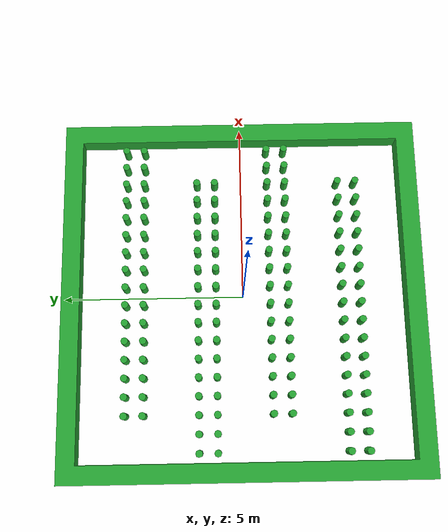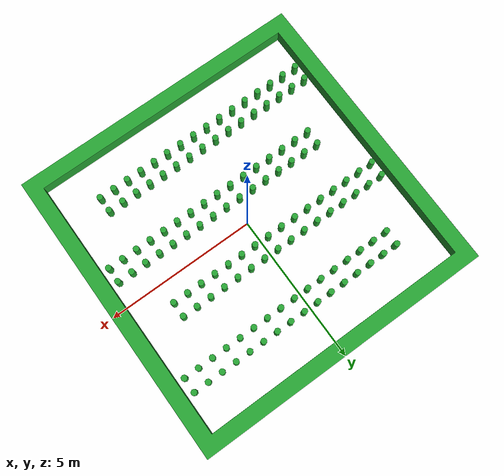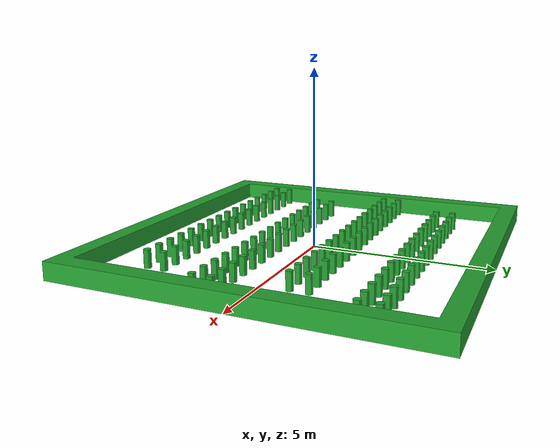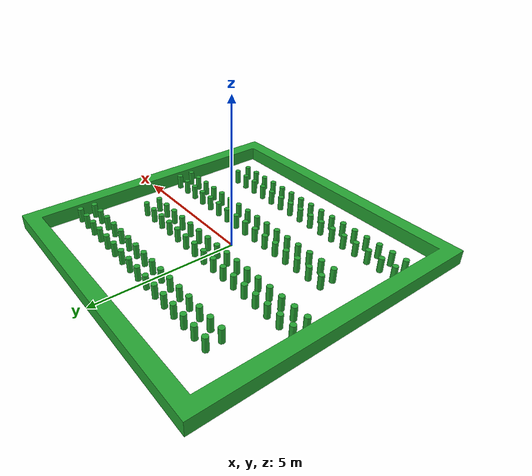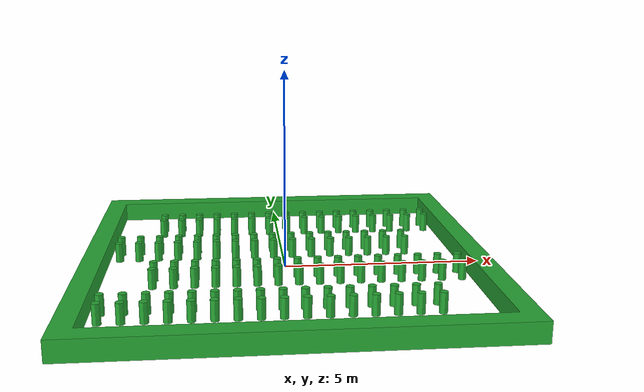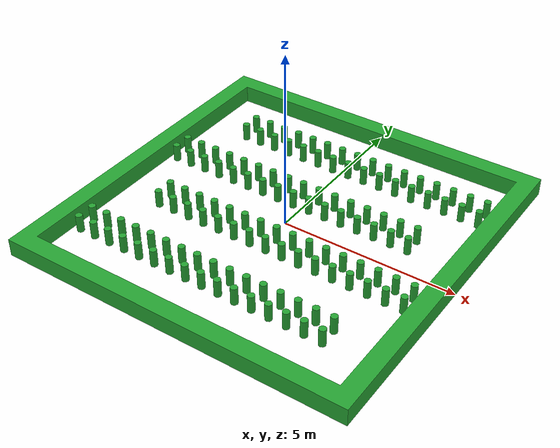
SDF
<?xml version='1.0'?>
<sdf version='1.5'>
  <!-- Bambuzal -->
  <model name='plantation'>
    <static>1</static>
    <link name='rows'>
      <collision name='one_one'>
        <pose> 0 0 0 1.57 0 0</pose>
        <geometry>
          <mesh>
            <uri>model://turtlebot3_bamboomaze/meshes/bamboo.obj</uri>
          </mesh>
        </geometry>
        <max_contacts>10</max_contacts>
        <surface>
          <bounce/>
          <friction>
            <ode/>
          </friction>
          <contact>
            <ode/>
          </contact>
        </surface>
      </collision>

      <visual name='one_one'>
        <pose> 0 0 0.001 1.57079632679 0 0</pose>
        <geometry>
          <mesh>
            <uri>model://turtlebot3_bamboomaze/meshes/bamboo.obj</uri>
          </mesh>
        </geometry>
        <material>
          <script>
            <uri>row.mtl</uri>
            <name>myGreen</name>
          </script>
        </material>
      </visual>

      <collision name='two'>
        <pose> -1 -2 0 1.57 0 0</pose>
        <geometry>
          <mesh>
            <uri>model://turtlebot3_bamboomaze/meshes/bamboo.obj</uri>
          </mesh>
        </geometry>
        <max_contacts>10</max_contacts>
        <surface>
          <bounce/>
          <friction>
            <ode/>
          </friction>
          <contact>
            <ode/>
          </contact>
        </surface>
      </collision>

      <visual name='two'>
        <pose> -1 -2 0.001 1.57079632679 0 0</pose>
        <geometry>
          <mesh>
            <uri>model://turtlebot3_bamboomaze/meshes/bamboo.obj</uri>
          </mesh>
        </geometry>
        <material>
          <script>
            <uri>row.mtl</uri>
            <name>myGreen</name>
          </script>
        </material>
      </visual>

      <collision name='three'>
        <pose> 0 -4 0 1.57 0 0</pose>
        <geometry>
          <mesh>
            <uri>model://turtlebot3_bamboomaze/meshes/bamboo.obj</uri>
          </mesh>
        </geometry>
        <max_contacts>10</max_contacts>
        <surface>
          <bounce/>
          <friction>
            <ode/>
          </friction>
          <contact>
            <ode/>
          </contact>
        </surface>
      </collision>

      <visual name='three'>
        <pose> 0 -4 0.001 1.57079632679 0 0</pose>
        <geometry>
          <mesh>
            <uri>model://turtlebot3_bamboomaze/meshes/bamboo.obj</uri>
          </mesh>
        </geometry>
        <material>
          <script>
            <uri>row.mtl</uri>
            <name>myGreen</name>
          </script>
        </material>
      </visual>

      <collision name='four'>
        <pose> -1 -6 0 1.57 0 0</pose>
        <geometry>
          <mesh>
            <uri>model://turtlebot3_bamboomaze/meshes/bamboo.obj</uri>
          </mesh>
        </geometry>
        <max_contacts>10</max_contacts>
        <surface>
          <bounce/>
          <friction>
            <ode/>
          </friction>
          <contact>
            <ode/>
          </contact>
        </surface>
      </collision>

      <visual name='four'>
        <pose> -1 -6 0.001 1.57079632679 0 0</pose>
        <geometry>
          <mesh>
            <uri>model://turtlebot3_bamboomaze/meshes/bamboo.obj</uri>
          </mesh>
        </geometry>
        <material>
          <script>
            <uri>row.mtl</uri>
            <name>myGreen</name>
          </script>
        </material>
      </visual>

      <collision name='lim'>
        <pose> 0 0 0 1.57 0 0</pose>
        <geometry>
          <mesh>
            <uri>model://turtlebot3_bamboomaze/meshes/limits.obj</uri>
          </mesh>
        </geometry>
        <max_contacts>10</max_contacts>
        <surface>
          <bounce/>
          <friction>
            <ode/>
          </friction>
          <contact>
            <ode/>
          </contact>
        </surface>
      </collision>

      <visual name='lim'>
        <pose> 0 0 0.001 1.57079632679 0 0</pose>
        <geometry>
          <mesh>
            <uri>model://turtlebot3_bamboomaze/meshes/limits.obj</uri>
          </mesh>
        </geometry>
        <material>
          <script>
            <uri>row.mtl</uri>
            <name>myGreen</name>
          </script>
        </material>
      </visual>

    </link>

  </model>
</sdf>
